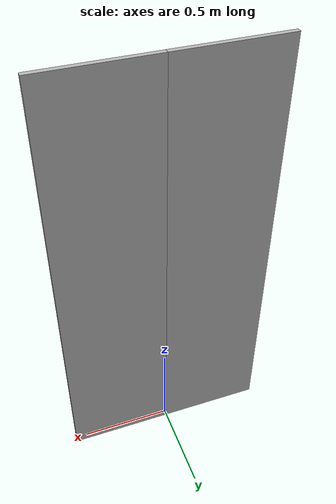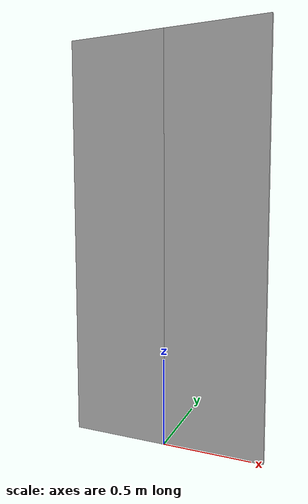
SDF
<?xml version='1.0'?>
<sdf version='1.6'>
<model name='seocho_EV_out_doors'>
  <static>1</static>
  <allow_auto_disable>1</allow_auto_disable>
  <link name='seocho_EV_out_doors_L_link'>
    <collision name='collision'>
      <geometry>
        <mesh>
          <scale>0.1 0.1 0.1</scale>
          <uri>model://seocho_EV_out_doors/meshes/B1_EV_door_L_out_col.obj</uri>
        </mesh>
      </geometry>
    </collision>
    <visual name='visual'>
      <geometry>
        <mesh>
          <scale>0.1 0.1 0.1</scale>
          <uri>model://seocho_EV_out_doors/meshes/B1_EV_door_L_out.obj</uri>
        </mesh>
      </geometry>
      <material>
        <emissive>0.02 0.02 0.02 1</emissive>
      </material>
    </visual>
  </link>
  <link name='seocho_EV_out_doors_R_link'>
    <collision name='collision'>
      <geometry>
        <mesh>
          <scale>0.1 0.1 0.1</scale>
          <uri>model://seocho_EV_out_doors/meshes/B1_EV_door_R_out_col.obj</uri>
        </mesh>
      </geometry>
    </collision>
    <visual name='visual'>
      <geometry>
        <mesh>
          <scale>0.1 0.1 0.1</scale>
          <uri>model://seocho_EV_out_doors/meshes/B1_EV_door_R_out.obj</uri>
        </mesh>
      </geometry>
      <material>
        <emissive>0.02 0.02 0.02 1</emissive>
      </material>
    </visual>
  </link>
</model>
</sdf>
